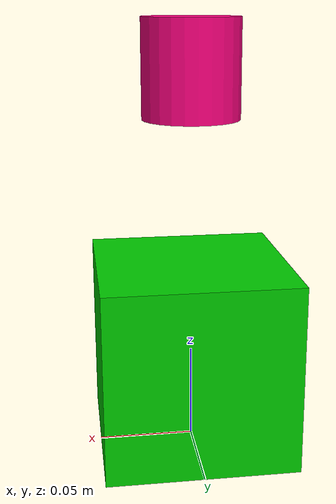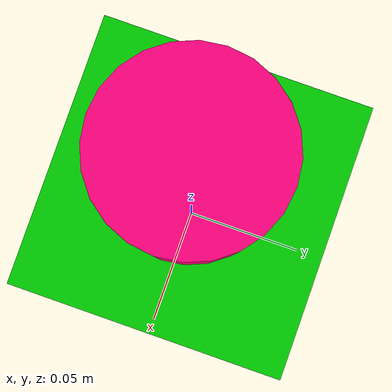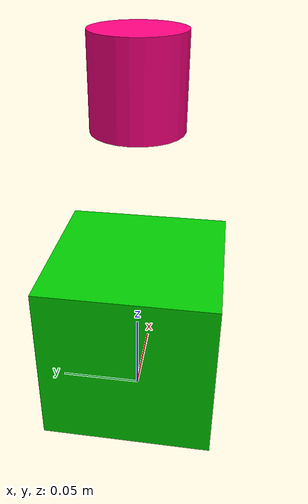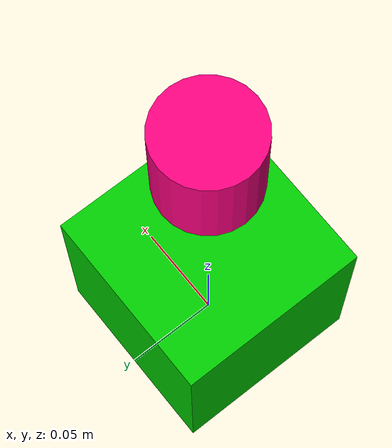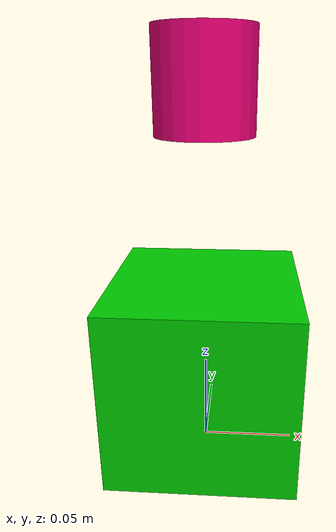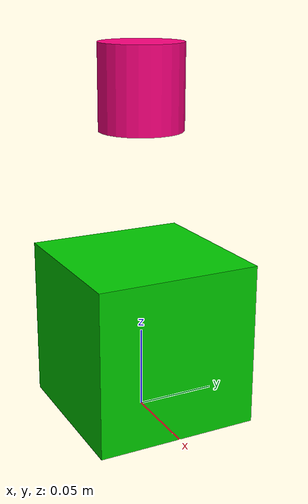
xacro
<?xml version="1.0"?>

<robot name="base_demo" xmlns:xacro="http://www.ros.org/wiki/xacro">
    <!-- Properties that can be used in the rest of the xacro file -->
    <xacro:property name="PI" value="3.14" />

    <xacro:property name="vert_samples" value="10" />
    <xacro:property name="hori_samples" value="10" />

    <xacro:property name="vert_min_angle" value="-5" />
    <xacro:property name="vert_max_angle" value="5" />
    <xacro:property name="hori_max_angle" value="30" />
    <xacro:property name="hori_min_angle" value="-30" />

    <xacro:property name="range_min" value="1" />
    <xacro:property name="range_max" value="5.0" />

    <xacro:property name="lz" value="0.1" />
    <xacro:property name="lx" value="0.1" />
    <xacro:property name="ly" value="0.1" />

    <!-- We can include other xacro or URDF files -->
    <xacro:include filename="$(find sensors_demo)/urdf/materials.xacro" />
    <xacro:include filename="$(find sensors_demo)/urdf/lidar.gazebo" />

    <!-- Rviz/Gazebo does not like the first link having mass or inertia, so a dummy link is created -->
    <link name="root" />

    <gazebo reference="base_link">
        <material>Gazebo/RedBright</material>
    </gazebo>

    <link name="base_link">
        <visual>
            <origin xyz="0 0 ${lz/2}" rpy="0 0 0" />
            <geometry>
                <box size="${lx} ${ly} ${lz}" />
            </geometry>
            <material name="green" />
        </visual>
        <collision>
            <origin xyz="0 0 ${lz/2}" rpy="0 0 0" />
            <geometry>
                <box size="${lx} ${ly} ${lz}" />
            </geometry>
        </collision>
        <inertial>
            <mass value="1.0" />
            <origin xyz="0 0 0" />
            <inertia ixx="1.0" ixy="0.0" ixz="0.0" iyy="1.0" iyz="0.0" izz="1.0" />
        </inertial>
    </link>

    <joint name="root_joint" type="fixed">
        <parent link="root" />
        <child link="base_link" />
    </joint>

    <link name="sensor_link">
        <visual>
            <origin xyz="0 0 ${lz}" rpy="0 0 0" />
            <geometry>
                <cylinder radius="${lx/4}" length="${lz/2}" />
            </geometry>
            <material name="pink_i_guess" />
        </visual>
        <collision>
            <origin xyz="0 0 ${lz}" rpy="0 0 0" />
            <geometry>
                <cylinder radius="${lx/4}" length="${lz/2}" />
            </geometry>
        </collision>
        <inertial>
            <mass value="1.0" />
            <origin xyz="0 0 0" />
            <inertia ixx="1.0" ixy="0.0" ixz="0.0" iyy="1.0" iyz="0.0" izz="1.0" />
        </inertial>
    </link>

    <joint name="sensor_joint" type="fixed">
        <parent link="base_link" />
        <child link="sensor_link" />
        <origin xyz="0 0 ${lz}" rpy="0 0 0" />
        <axis xyz="1 0 0" />
    </joint>

</robot>

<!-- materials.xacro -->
<robot>

  <material name="black">
    <color rgba="0.0 0.0 0.0 1.0"/>
  </material>

  <material name="blue">
    <color rgba="0.0 0.0 0.8 1.0"/>
  </material>

  <material name="green">
    <color rgba="0.0 0.8 0.0 1.0"/>
  </material>

  <material name="grey">
    <color rgba="0.2 0.2 0.2 1.0"/>
  </material>

  <material name="orange">
    <color rgba="${255/255} ${108/255} ${10/255} 1.0"/>
  </material>

  <material name="pink_i_guess">
    <color rgba="${255/255} ${0/255} ${128/255} 1.0"/>
  </material>

  <material name="brown">
    <color rgba="${222/255} ${207/255} ${195/255} 1.0"/>
  </material>

  <material name="red">
    <color rgba="0.8 0.0 0.0 1.0"/>
  </material>

  <material name="white">
    <color rgba="1.0 1.0 1.0 1.0"/>
  </material>

</robot>
